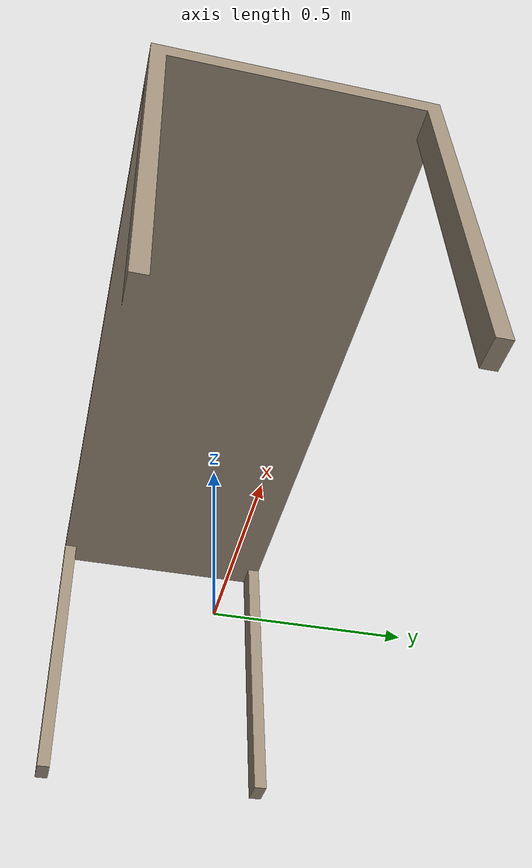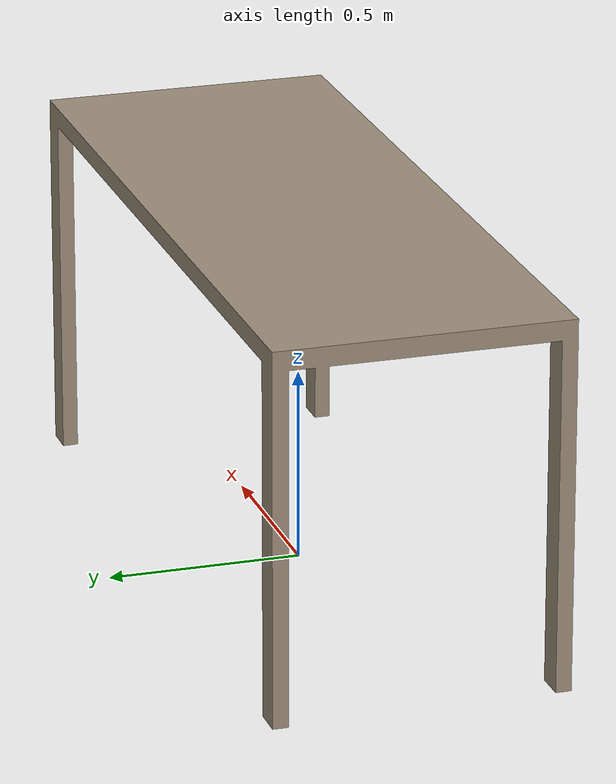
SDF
<?xml version="1.0"?>
<sdf version="1.9">
  <model name="room115_table2000">
    <static>true</static>
    <link name="room115_table2000_link">
      <visual name="room115_table2000_visual">
        <pose>-1.0 -0.375 0.9 0 0 0</pose>
        <geometry>
          <mesh>
            <uri>model://room115_table2000/meshes/table2000.stl</uri>
          </mesh>
        </geometry>
        <material>
          <ambient>0.62 0.56 0.48 1.0</ambient>
          <diffuse>0.62 0.56 0.48 1.0</diffuse>
          <specular>0.12 0.12 0.12 1.0</specular>
          <emissive>0.0 0.0 0.0 0.0</emissive>
        </material>
      </visual>
      <collision name="room115_table2000_collision">
        <pose>-1.0 -0.375 0.9 0 0 0</pose>
        <geometry>
          <mesh>
            <uri>model://room115_table2000/meshes/table2000.stl</uri>
          </mesh>
        </geometry>
      </collision>
    </link>
  </model>
</sdf>
